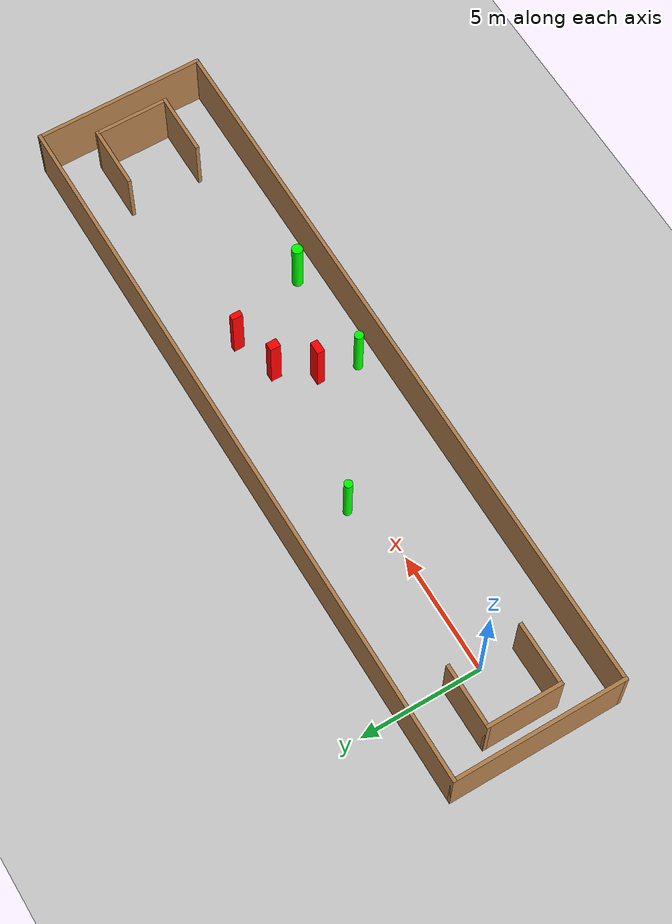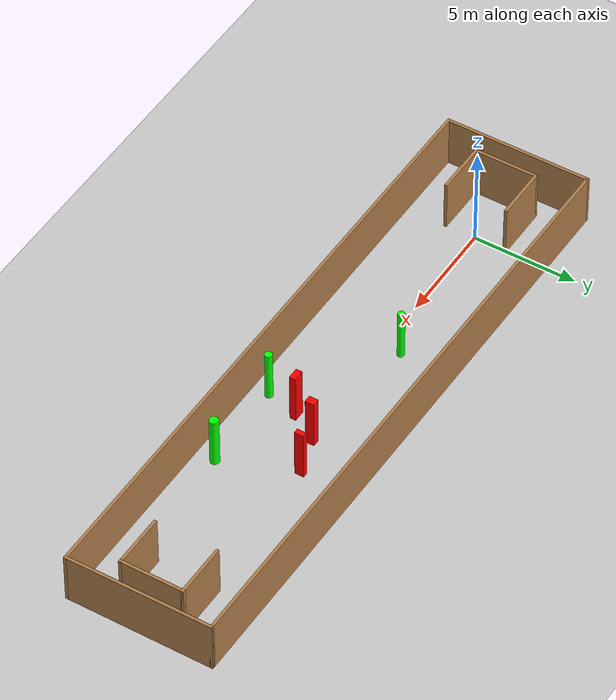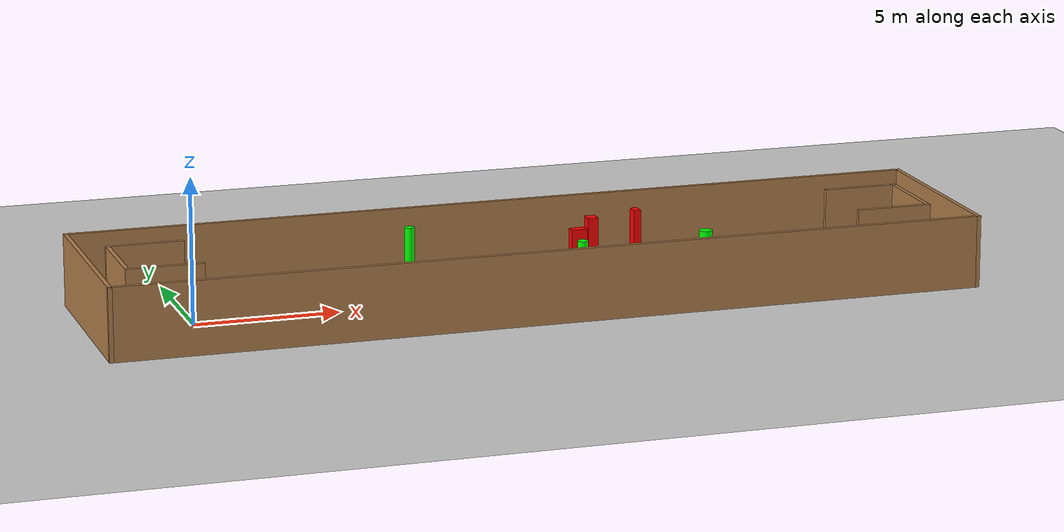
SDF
<sdf version="1.7">
 <world name="default">
  <light name="sun" type="directional">
   <pose>0 0 10 0 -0 0</pose>
   <diffuse>0.8 0.8 0.8 1</diffuse>
   <specular>0.2 0.2 0.2 1</specular>
   <attenuation>
    <range>1000</range>
    <constant>0.9</constant>
    <linear>0.01</linear>
    <quadratic>0.001</quadratic>
   </attenuation>
   <direction>-0.5 0.1 -0.9</direction>
   <spot><inner_angle>0</inner_angle><outer_angle>0</outer_angle><falloff>0</falloff></spot>
  </light>
  <model name="ground_plane">
   <static>1</static>
   <link name="link">
    <collision name="collision">
     <geometry><plane><normal>0 0 1</normal><size>100 100</size></plane></geometry>
     <surface>
      <contact><collide_bitmask>65535</collide_bitmask></contact>
      <friction><ode><mu>100</mu><mu2>50</mu2></ode></friction>
     </surface>
    </collision>
    <visual name="visual">
     <cast_shadows>0</cast_shadows>
     <geometry><plane><normal>0 0 1</normal><size>100 100</size></plane></geometry>
     <material>
      <script><uri>file://media/materials/scripts/gazebo.material</uri><name>Gazebo/Grey</name></script>
     </material>
    </visual>
   </link>
  </model>
  <gravity>0 0 -9.8</gravity>
  <magnetic_field>6e-06 2.3e-05 -4.2e-05</magnetic_field>
  <atmosphere type="adiabatic"/>
  <physics type="ode">
   <max_step_size>0.001</max_step_size>
   <real_time_factor>1</real_time_factor>
   <real_time_update_rate>1000</real_time_update_rate>
  </physics>
  <scene><ambient>0.4 0.4 0.4 1</ambient><background>0.7 0.7 0.7 1</background><shadows>1</shadows></scene>
  <spherical_coordinates>
   <surface_model>EARTH_WGS84</surface_model>
   <latitude_deg>0</latitude_deg>
   <longitude_deg>0</longitude_deg>
   <elevation>0</elevation>
   <heading_deg>0</heading_deg>
  </spherical_coordinates>
  <model name="my_base_walls">
   <link name="Wall_0">
    <collision name="Wall_0_Collision">
     <geometry><box><size>7.15 0.15 2.5</size></box></geometry>
     <pose>0 0 1.25 0 -0 0</pose>
    </collision>
    <visual name="Wall_0_Visual">
     <pose>0 0 1.25 0 -0 0</pose>
     <geometry><box><size>7.15 0.15 2.5</size></box></geometry>
     <material>
      <script><uri>file://media/materials/scripts/gazebo.material</uri><name>Gazebo/Wood</name></script>
      <ambient>1 1 1 1</ambient>
     </material>
     <meta><layer>0</layer></meta>
    </visual>
    <pose>-15 0 0 0 -0 1.5708</pose>
   </link>
   <link name="Wall_10">
    <collision name="Wall_10_Collision">
     <geometry><box><size>2.65 0.15 2.5</size></box></geometry>
     <pose>0 0 1.25 0 -0 0</pose>
    </collision>
    <visual name="Wall_10_Visual">
     <pose>0 0 1.25 0 -0 0</pose>
     <geometry><box><size>2.65 0.15 2.5</size></box></geometry>
     <material>
      <script><uri>file://media/materials/scripts/gazebo.material</uri><name>Gazebo/Wood</name></script>
      <ambient>1 1 1 1</ambient>
     </material>
     <meta><layer>0</layer></meta>
    </visual>
    <pose>-12.75 -1.5 0 0 -0 0</pose>
   </link>
   <link name="Wall_12">
    <collision name="Wall_12_Collision">
     <geometry><box><size>2.65 0.15 2.5</size></box></geometry>
     <pose>0 0 1.25 0 -0 0</pose>
    </collision>
    <visual name="Wall_12_Visual">
     <pose>0 0 1.25 0 -0 0</pose>
     <geometry><box><size>2.65 0.15 2.5</size></box></geometry>
     <material>
      <script><uri>file://media/materials/scripts/gazebo.material</uri><name>Gazebo/Wood</name></script>
      <ambient>1 1 1 1</ambient>
     </material>
     <meta><layer>0</layer></meta>
    </visual>
    <pose>-12.75 1.5 0 0 -0 0</pose>
   </link>
   <link name="Wall_14">
    <collision name="Wall_14_Collision">
     <geometry><box><size>3.15 0.15 2.5</size></box></geometry>
     <pose>0 0 1.25 0 -0 0</pose>
    </collision>
    <visual name="Wall_14_Visual">
     <pose>0 0 1.25 0 -0 0</pose>
     <geometry><box><size>3.15 0.15 2.5</size></box></geometry>
     <material>
      <script><uri>file://media/materials/scripts/gazebo.material</uri><name>Gazebo/Wood</name></script>
      <ambient>1 1 1 1</ambient>
     </material>
     <meta><layer>0</layer></meta>
    </visual>
    <pose>14 0 0 0 -0 -1.5708</pose>
   </link>
   <link name="Wall_15">
    <collision name="Wall_15_Collision">
     <geometry><box><size>2.65 0.15 2.5</size></box></geometry>
     <pose>0 0 1.25 0 -0 0</pose>
    </collision>
    <visual name="Wall_15_Visual">
     <pose>0 0 1.25 0 -0 0</pose>
     <geometry><box><size>2.65 0.15 2.5</size></box></geometry>
     <material>
      <script><uri>file://media/materials/scripts/gazebo.material</uri><name>Gazebo/Wood</name></script>
      <ambient>1 1 1 1</ambient>
     </material>
     <meta><layer>0</layer></meta>
    </visual>
    <pose>12.75 -1.5 0 0 -0 3.14159</pose>
   </link>
   <link name="Wall_17">
    <collision name="Wall_17_Collision">
     <geometry><box><size>2.65 0.15 2.5</size></box></geometry>
     <pose>0 0 1.25 0 -0 0</pose>
    </collision>
    <visual name="Wall_17_Visual">
     <pose>0 0 1.25 0 -0 0</pose>
     <geometry><box><size>2.65 0.15 2.5</size></box></geometry>
     <material>
      <script><uri>file://media/materials/scripts/gazebo.material</uri><name>Gazebo/Wood</name></script>
      <ambient>1 1 1 1</ambient>
     </material>
     <meta><layer>0</layer></meta>
    </visual>
    <pose>12.75 1.5 0 0 -0 3.14159</pose>
   </link>
   <link name="Wall_2">
    <collision name="Wall_2_Collision">
     <geometry><box><size>30.15 0.15 2.5</size></box></geometry>
     <pose>0 0 1.25 0 -0 0</pose>
    </collision>
    <visual name="Wall_2_Visual">
     <pose>0 0 1.25 0 -0 0</pose>
     <geometry><box><size>30.15 0.15 2.5</size></box></geometry>
     <material>
      <script><uri>file://media/materials/scripts/gazebo.material</uri><name>Gazebo/Wood</name></script>
      <ambient>1 1 1 1</ambient>
     </material>
     <meta><layer>0</layer></meta>
    </visual>
    <pose>-0 -3.5 0 0 -0 0</pose>
   </link>
   <link name="Wall_4">
    <collision name="Wall_4_Collision">
     <geometry><box><size>30.15 0.15 2.5</size></box></geometry>
     <pose>0 0 1.25 0 -0 0</pose>
    </collision>
    <visual name="Wall_4_Visual">
     <pose>0 0 1.25 0 -0 0</pose>
     <geometry><box><size>30.15 0.15 2.5</size></box></geometry>
     <material>
      <script><uri>file://media/materials/scripts/gazebo.material</uri><name>Gazebo/Wood</name></script>
      <ambient>1 1 1 1</ambient>
     </material>
     <meta><layer>0</layer></meta>
    </visual>
    <pose>-0 3.5 0 0 -0 0</pose>
   </link>
   <link name="Wall_6">
    <collision name="Wall_6_Collision">
     <geometry><box><size>7.15 0.15 2.5</size></box></geometry>
     <pose>0 0 1.25 0 -0 0</pose>
    </collision>
    <visual name="Wall_6_Visual">
     <pose>0 0 1.25 0 -0 0</pose>
     <geometry><box><size>7.15 0.15 2.5</size></box></geometry>
     <material>
      <script><uri>file://media/materials/scripts/gazebo.material</uri><name>Gazebo/Wood</name></script>
      <ambient>1 1 1 1</ambient>
     </material>
     <meta><layer>0</layer></meta>
    </visual>
    <pose>15 0 0 0 -0 -1.5708</pose>
   </link>
   <link name="Wall_9">
    <collision name="Wall_9_Collision">
     <geometry><box><size>3.15 0.15 2.5</size></box></geometry>
     <pose>0 0 1.25 0 -0 0</pose>
    </collision>
    <visual name="Wall_9_Visual">
     <pose>0 0 1.25 0 -0 0</pose>
     <geometry><box><size>3.15 0.15 2.5</size></box></geometry>
     <material>
      <script><uri>file://media/materials/scripts/gazebo.material</uri><name>Gazebo/Wood</name></script>
      <ambient>1 1 1 1</ambient>
     </material>
     <meta><layer>0</layer></meta>
    </visual>
    <pose>-14 0 0 0 -0 -1.5708</pose>
   </link>
   <static>1</static>
   <pose>11.5 0 0 0 -0 0</pose>
  </model>
  <model name="cylinder1">
   <static>1</static>
   <link name="link">
    <inertial>
     <mass>1</mass>
     <inertia><ixx>0.5</ixx><ixy>0</ixy><ixz>0</ixz><iyy>0.5</iyy><iyz>0</iyz><izz>1</izz></inertia>
    </inertial>
    <collision name="collision">
     <geometry><cylinder><radius>0.21942444689041174</radius><length>2.5</length></cylinder></geometry>
    </collision>
    <visual name="visual">
     <geometry><cylinder><radius>0.21942444689041174</radius><length>2.5</length></cylinder></geometry>
     <material>
      <ambient>0 1 0 1</ambient>
      <diffuse>0 1 0 1</diffuse>
      <specular>0.1 0.1 0.1 1</specular>
      <emissive>0 0 0 0</emissive>
     </material>
    </visual>
   </link>
   <pose>17.012951086947687 -2.5068920441047746 1.25 0 0 0</pose>
  </model>
  <model name="cylinder2">
   <static>1</static>
   <link name="link">
    <inertial>
     <mass>1</mass>
     <inertia><ixx>0.5</ixx><ixy>0</ixy><ixz>0</ixz><iyy>0.5</iyy><iyz>0</iyz><izz>1</izz></inertia>
    </inertial>
    <collision name="collision">
     <geometry><cylinder><radius>0.16983563299967255</radius><length>2.5</length></cylinder></geometry>
    </collision>
    <visual name="visual">
     <geometry><cylinder><radius>0.16983563299967255</radius><length>2.5</length></cylinder></geometry>
     <material>
      <ambient>0 1 0 1</ambient>
      <diffuse>0 1 0 1</diffuse>
      <specular>0.1 0.1 0.1 1</specular>
      <emissive>0 0 0 0</emissive>
     </material>
    </visual>
   </link>
   <pose>7.680163548873892 0.8872839112352677 1.25 0 0 0</pose>
  </model>
  <model name="cylinder3">
   <static>1</static>
   <link name="link">
    <inertial>
     <mass>1</mass>
     <inertia><ixx>0.5</ixx><ixy>0</ixy><ixz>0</ixz><iyy>0.5</iyy><iyz>0</iyz><izz>1</izz></inertia>
    </inertial>
    <collision name="collision">
     <geometry><cylinder><radius>0.1792639761202248</radius><length>2.5</length></cylinder></geometry>
    </collision>
    <visual name="visual">
     <geometry><cylinder><radius>0.1792639761202248</radius><length>2.5</length></cylinder></geometry>
     <material>
      <ambient>0 1 0 1</ambient>
      <diffuse>0 1 0 1</diffuse>
      <specular>0.1 0.1 0.1 1</specular>
      <emissive>0 0 0 0</emissive>
     </material>
    </visual>
   </link>
   <pose>12.65129400269599 -2.5968083704447915 1.25 0 0 0</pose>
  </model>
  <model name="box1">
   <static>1</static>
   <link name="link">
    <inertial>
     <mass>1</mass>
     <inertia><ixx>0.083</ixx><ixy>0</ixy><ixz>0</ixz><iyy>0.083</iyy><iyz>0</iyz><izz>0.083</izz></inertia>
    </inertial>
    <collision name="collision">
     <geometry><box><size>0.3523773459341396 0.44102893348987626 2.5</size></box></geometry>
    </collision>
    <visual name="visual">
     <geometry><box><size>0.3523773459341396 0.44102893348987626 2.5</size></box></geometry>
     <material>
      <ambient>1 0 0 1</ambient>
      <diffuse>1 0 0 1</diffuse>
      <specular>0.1 0.1 0.1 1</specular>
      <emissive>0 0 0 0</emissive>
     </material>
    </visual>
    <sensor name="my_contact" type="contact">
     <contact><collision>box_collision</collision><topic>__default_topic__</topic></contact>
    </sensor>
   </link>
   <pose>13.939530972155172 0.34217515030642076 1.25 0 0 0</pose>
  </model>
  <model name="box2">
   <static>1</static>
   <link name="link">
    <inertial>
     <mass>1</mass>
     <inertia><ixx>0.083</ixx><ixy>0</ixy><ixz>0</ixz><iyy>0.083</iyy><iyz>0</iyz><izz>0.083</izz></inertia>
    </inertial>
    <collision name="collision">
     <geometry><box><size>0.545040504972101 0.31286214094818005 2.5</size></box></geometry>
    </collision>
    <visual name="visual">
     <geometry><box><size>0.545040504972101 0.31286214094818005 2.5</size></box></geometry>
     <material>
      <ambient>1 0 0 1</ambient>
      <diffuse>1 0 0 1</diffuse>
      <specular>0.1 0.1 0.1 1</specular>
      <emissive>0 0 0 0</emissive>
     </material>
    </visual>
    <sensor name="my_contact" type="contact">
     <contact><collision>box_collision</collision><topic>__default_topic__</topic></contact>
    </sensor>
   </link>
   <pose>13.017141831123878 -1.012777045590075 1.25 0 0 0</pose>
  </model>
  <model name="box3">
   <static>1</static>
   <link name="link">
    <inertial>
     <mass>1</mass>
     <inertia><ixx>0.083</ixx><ixy>0</ixy><ixz>0</ixz><iyy>0.083</iyy><iyz>0</iyz><izz>0.083</izz></inertia>
    </inertial>
    <collision name="collision">
     <geometry><box><size>0.23896672521946913 0.45198124165800035 2.5</size></box></geometry>
    </collision>
    <visual name="visual">
     <geometry><box><size>0.23896672521946913 0.45198124165800035 2.5</size></box></geometry>
     <material>
      <ambient>1 0 0 1</ambient>
      <diffuse>1 0 0 1</diffuse>
      <specular>0.1 0.1 0.1 1</specular>
      <emissive>0 0 0 0</emissive>
     </material>
    </visual>
    <sensor name="my_contact" type="contact">
     <contact><collision>box_collision</collision><topic>__default_topic__</topic></contact>
    </sensor>
   </link>
   <pose>15.720858273839113 0.9100535485647505 1.25 0 0 0</pose>
  </model>
 </world>
</sdf>
